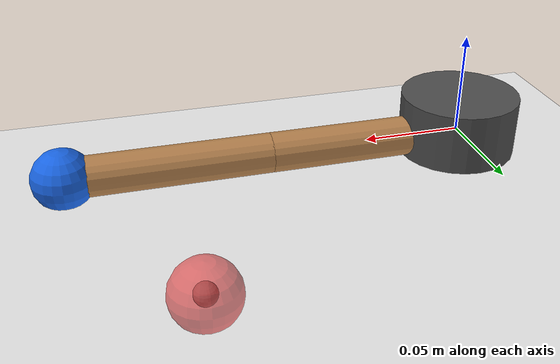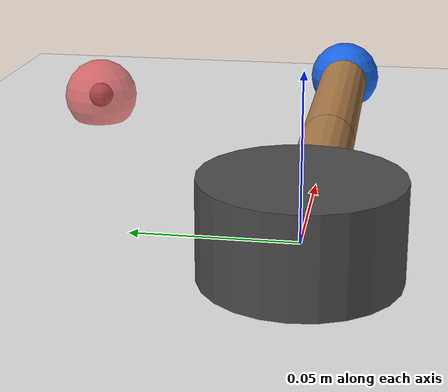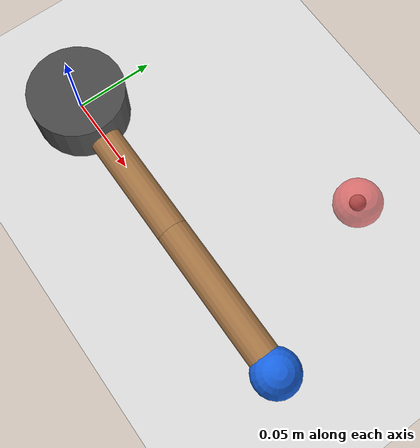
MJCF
<mujoco model="reacher_arm">
  <compiler angle="radian" inertiafromgeom="true"/>
  <default>
    <joint armature="0.05" damping="1.0" limited="true"/>
    <geom contype="0" conaffinity="0" friction="1 0.1 0.1" rgba="0.7 0.5 0.3 1"/>
  </default>
  <option timestep="0.01" gravity="0 0 0" integrator="RK4"/>

  <worldbody>
    <light diffuse="0.8 0.8 0.8" pos="0 0 3" dir="0 0 -1"/>
    <geom name="ground" type="plane" pos="0 0 -0.01" size="1 1 0.01" rgba="0.9 0.9 0.9 1" contype="0" conaffinity="0"/>

    <!-- Base of the arm, fixed at origin -->
    <body name="link0" pos="0 0 0">
      <geom name="base" type="cylinder" size="0.03 0.02" rgba="0.3 0.3 0.3 1"/>

      <!-- Link 1: shoulder -->
      <body name="link1" pos="0 0 0">
        <joint name="shoulder" type="hinge" axis="0 0 1" range="-3.1416 3.1416" pos="0 0 0"/>
        <geom name="link1_geom" type="capsule" fromto="0 0 0 0.1 0 0" size="0.01"/>

        <!-- Link 2: elbow, attached at end of link 1 -->
        <body name="link2" pos="0.1 0 0">
          <joint name="elbow" type="hinge" axis="0 0 1" range="-3.1416 3.1416" pos="0 0 0"/>
          <geom name="link2_geom" type="capsule" fromto="0 0 0 0.1 0 0" size="0.01"/>

          <!-- End effector marker -->
          <body name="end_effector" pos="0.1 0 0">
            <geom name="ee_geom" type="sphere" size="0.015" rgba="0.1 0.4 0.9 1"/>
            <site name="ee_site" pos="0 0 0" size="0.005"/>
          </body>
        </body>
      </body>
    </body>

    <!-- Target: a free-floating marker the arm must reach. Not part of the
         kinematic chain -- it has no joints affecting the arm, only visual
         and distance-computation relevance. -->
    <body name="target" pos="0.15 0.1 0">
      <geom name="target_geom" type="sphere" size="0.015" rgba="0.9 0.2 0.2 0.6" contype="0" conaffinity="0"/>
      <site name="target_site" pos="0 0 0" size="0.005"/>
    </body>
  </worldbody>

  <actuator>
    <motor joint="shoulder" gear="10" ctrlrange="-1 1" ctrllimited="true"/>
    <motor joint="elbow" gear="10" ctrlrange="-1 1" ctrllimited="true"/>
  </actuator>
</mujoco>
